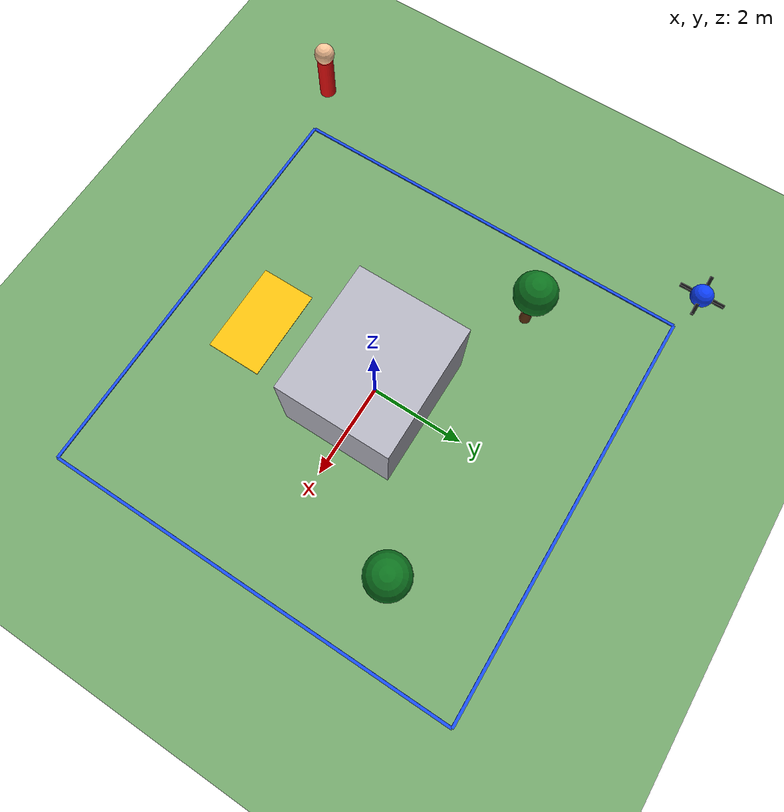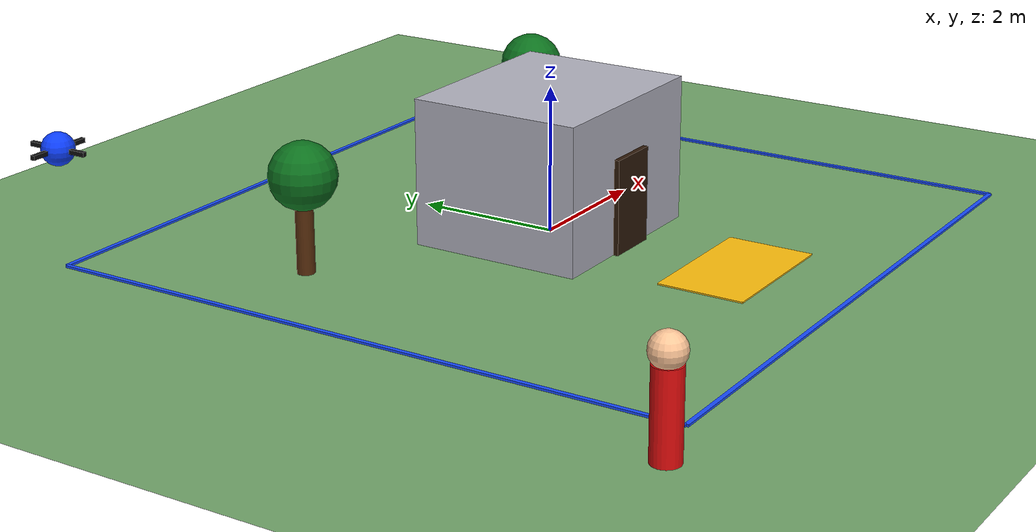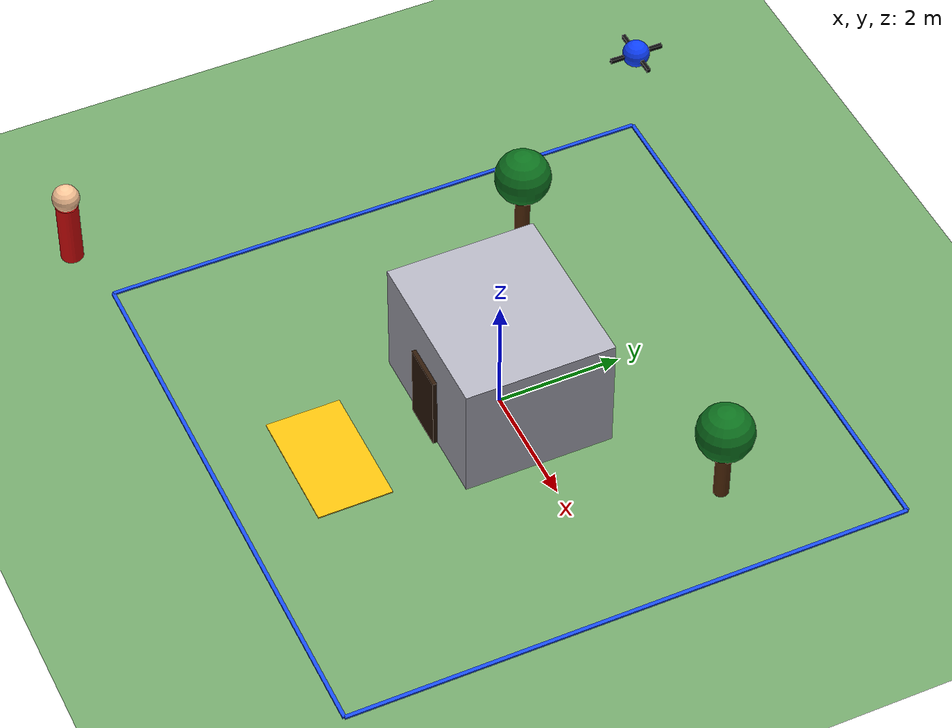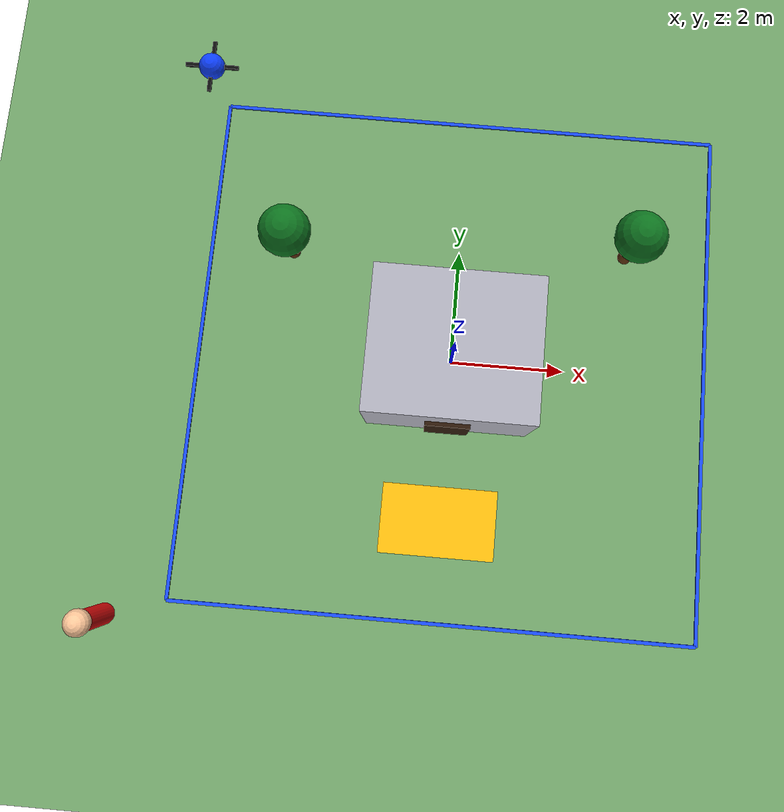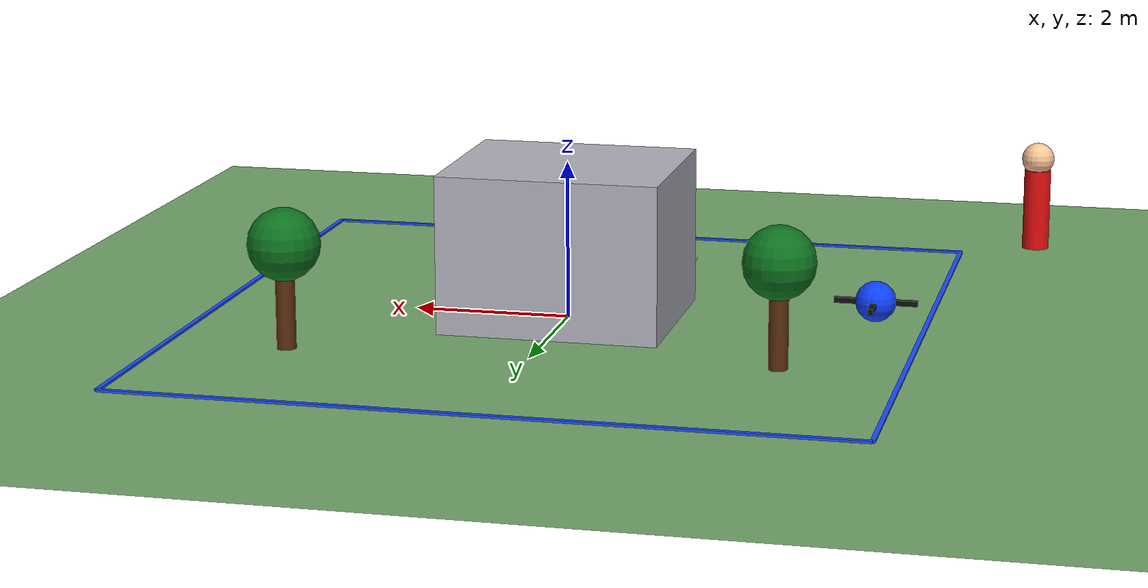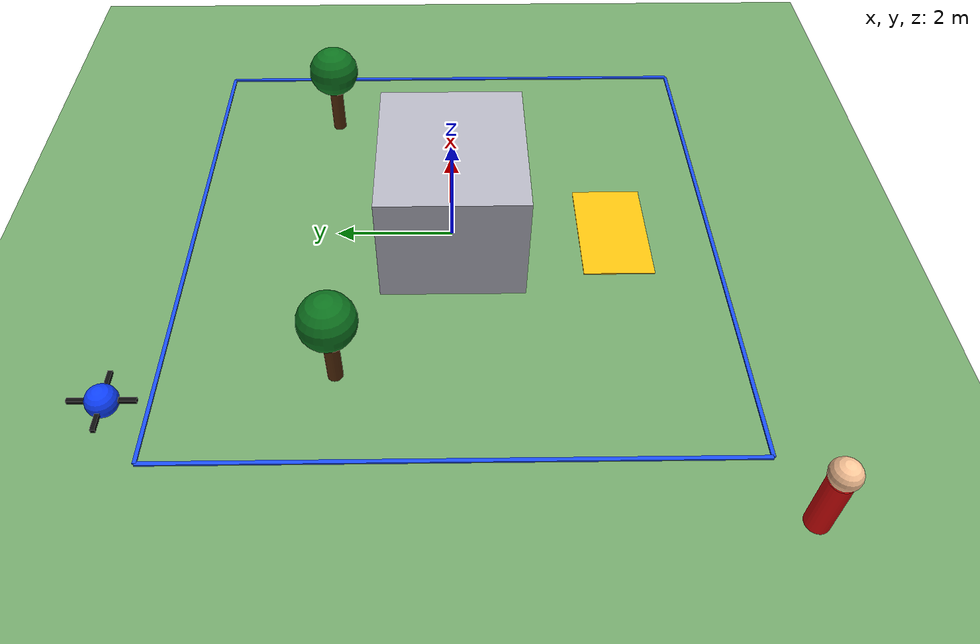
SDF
<?xml version="1.0" ?>
<sdf version="1.9">
  <world name="default">
    <physics name="1ms" type="ignored">
      <max_step_size>0.001</max_step_size>
      <real_time_factor>1.0</real_time_factor>
    </physics>

    <plugin
      filename="gz-sim-physics-system"
      name="gz::sim::systems::Physics">
    </plugin>
    <plugin
      filename="gz-sim-user-commands-system"
      name="gz::sim::systems::UserCommands">
    </plugin>
    <plugin
      filename="gz-sim-scene-broadcaster-system"
      name="gz::sim::systems::SceneBroadcaster">
    </plugin>

    <light type="directional" name="sun">
      <cast_shadows>true</cast_shadows>
      <pose>0 0 10 0 0 0</pose>
      <diffuse>0.8 0.8 0.8 1</diffuse>
      <specular>0.2 0.2 0.2 1</specular>
      <attenuation>
        <range>1000</range>
        <constant>0.9</constant>
        <linear>0.01</linear>
        <quadratic>0.001</quadratic>
      </attenuation>
      <direction>-0.5 0.1 -0.9</direction>
    </light>

    <model name="ground_plane">
      <static>true</static>
      <link name="link">
        <collision name="collision">
          <geometry>
            <plane>
              <normal>0 0 1</normal>
              <size>20 20</size>
            </plane>
          </geometry>
        </collision>
        <visual name="visual">
          <geometry>
            <plane>
              <normal>0 0 1</normal>
              <size>20 20</size>
            </plane>
          </geometry>
          <material>
            <ambient>0.45 0.65 0.42 1</ambient>
            <diffuse>0.45 0.65 0.42 1</diffuse>
          </material>
        </visual>
      </link>
    </model>

    <!-- Central secured building -->
    <model name="secured_building">
      <static>true</static>
      <pose>0 0 1 0 0 0</pose>
      <link name="building_link">
        <collision name="collision">
          <geometry>
            <box>
              <size>2.8 2.4 2.0</size>
            </box>
          </geometry>
        </collision>
        <visual name="visual">
          <geometry>
            <box>
              <size>2.8 2.4 2.0</size>
            </box>
          </geometry>
          <material>
            <ambient>0.70 0.70 0.75 1</ambient>
            <diffuse>0.70 0.70 0.75 1</diffuse>
          </material>
        </visual>
      </link>
    </model>

    <!-- Door on the south side of building -->
    <model name="building_door">
      <static>true</static>
      <pose>0 -1.23 0.65 0 0 0</pose>
      <link name="door_link">
        <visual name="visual">
          <geometry>
            <box>
              <size>0.75 0.08 1.3</size>
            </box>
          </geometry>
          <material>
            <ambient>0.18 0.10 0.04 1</ambient>
            <diffuse>0.18 0.10 0.04 1</diffuse>
          </material>
        </visual>
      </link>
    </model>

    <!-- Single high-security yellow entrance zone -->
    <model name="high_security_door_zone">
      <static>true</static>
      <pose>0 -2.8 0.011 0 0 0</pose>
      <link name="hs_zone_link">
        <visual name="visual">
          <geometry>
            <box>
              <size>2.0 1.2 0.02</size>
            </box>
          </geometry>
          <material>
            <ambient>1.0 0.75 0.05 1</ambient>
            <diffuse>1.0 0.75 0.05 1</diffuse>
          </material>
        </visual>
      </link>
    </model>

    <!-- Patrol route markers -->
    <model name="patrol_rectangle">
      <static>true</static>
      <pose>0 0 0.025 0 0 0</pose>
      <link name="route_link">
        <visual name="north">
          <pose>0 4.5 0 0 0 0</pose>
          <geometry><box><size>9.0 0.06 0.03</size></box></geometry>
          <material><ambient>0.1 0.3 1 1</ambient><diffuse>0.1 0.3 1 1</diffuse></material>
        </visual>
        <visual name="south">
          <pose>0 -4.5 0 0 0 0</pose>
          <geometry><box><size>9.0 0.06 0.03</size></box></geometry>
          <material><ambient>0.1 0.3 1 1</ambient><diffuse>0.1 0.3 1 1</diffuse></material>
        </visual>
        <visual name="east">
          <pose>4.5 0 0 0 0 0</pose>
          <geometry><box><size>0.06 9.0 0.03</size></box></geometry>
          <material><ambient>0.1 0.3 1 1</ambient><diffuse>0.1 0.3 1 1</diffuse></material>
        </visual>
        <visual name="west">
          <pose>-4.5 0 0 0 0 0</pose>
          <geometry><box><size>0.06 9.0 0.03</size></box></geometry>
          <material><ambient>0.1 0.3 1 1</ambient><diffuse>0.1 0.3 1 1</diffuse></material>
        </visual>
      </link>
    </model>

    <!-- Simple visible drone -->
    <model name="drone">
      <static>true</static>
      <pose>-4.5 4.5 1.6 0 0 0</pose>
      <link name="drone_link">
        <visual name="body">
          <geometry>
            <sphere>
              <radius>0.22</radius>
            </sphere>
          </geometry>
          <material>
            <ambient>0.05 0.25 1.0 1</ambient>
            <diffuse>0.05 0.25 1.0 1</diffuse>
          </material>
        </visual>
        <visual name="arm_x">
          <geometry><box><size>0.9 0.06 0.06</size></box></geometry>
          <material><ambient>0.05 0.05 0.05 1</ambient><diffuse>0.05 0.05 0.05 1</diffuse></material>
        </visual>
        <visual name="arm_y">
          <geometry><box><size>0.06 0.9 0.06</size></box></geometry>
          <material><ambient>0.05 0.05 0.05 1</ambient><diffuse>0.05 0.05 0.05 1</diffuse></material>
        </visual>
      </link>
    </model>

    <!-- Visible intruder marker -->
    <model name="intruder_marker">
      <static>true</static>
      <pose>-5.5 -4.8 0.08 0 0 0</pose>
      <link name="intruder_link">
        <visual name="body">
          <pose>0 0 0.55 0 0 0</pose>
          <geometry>
            <cylinder>
              <radius>0.18</radius>
              <length>1.1</length>
            </cylinder>
          </geometry>
          <material>
            <ambient>0.9 0.05 0.05 1</ambient>
            <diffuse>0.9 0.05 0.05 1</diffuse>
          </material>
        </visual>
        <visual name="head">
          <pose>0 0 1.25 0 0 0</pose>
          <geometry>
            <sphere>
              <radius>0.22</radius>
            </sphere>
          </geometry>
          <material>
            <ambient>1.0 0.78 0.60 1</ambient>
            <diffuse>1.0 0.78 0.60 1</diffuse>
          </material>
        </visual>
      </link>
    </model>

    <!-- Obstacles / trees -->
    <model name="tree_1">
      <static>true</static>
      <pose>-3 1.8 0.5 0 0 0</pose>
      <link name="link">
        <visual name="trunk"><geometry><cylinder><radius>0.12</radius><length>1.0</length></cylinder></geometry><material><ambient>0.35 0.18 0.05 1</ambient><diffuse>0.35 0.18 0.05 1</diffuse></material></visual>
        <visual name="leaves"><pose>0 0 0.8 0 0 0</pose><geometry><sphere><radius>0.45</radius></sphere></geometry><material><ambient>0.05 0.45 0.12 1</ambient><diffuse>0.05 0.45 0.12 1</diffuse></material></visual>
      </link>
    </model>

    <model name="tree_2">
      <static>true</static>
      <pose>3 2.2 0.5 0 0 0</pose>
      <link name="link">
        <visual name="trunk"><geometry><cylinder><radius>0.12</radius><length>1.0</length></cylinder></geometry><material><ambient>0.35 0.18 0.05 1</ambient><diffuse>0.35 0.18 0.05 1</diffuse></material></visual>
        <visual name="leaves"><pose>0 0 0.8 0 0 0</pose><geometry><sphere><radius>0.45</radius></sphere></geometry><material><ambient>0.05 0.45 0.12 1</ambient><diffuse>0.05 0.45 0.12 1</diffuse></material></visual>
      </link>
    </model>

  </world>
</sdf>
